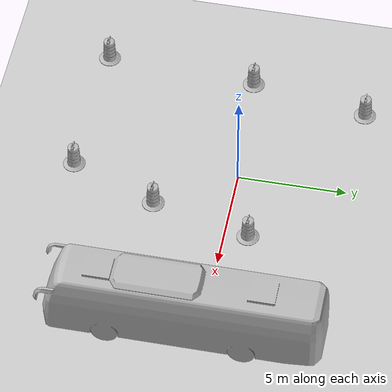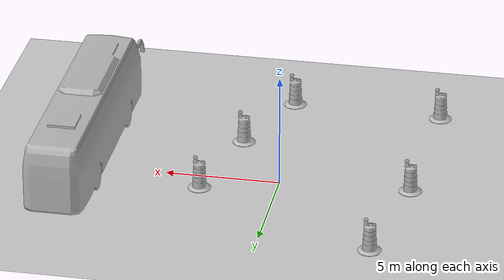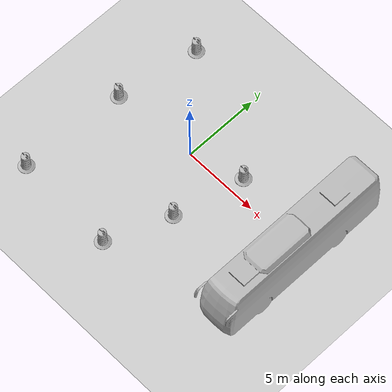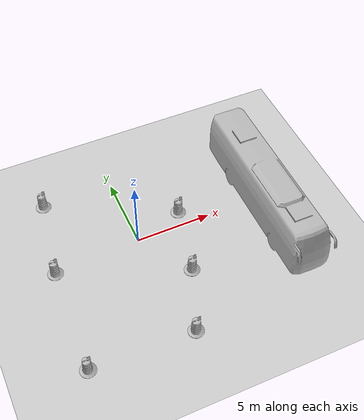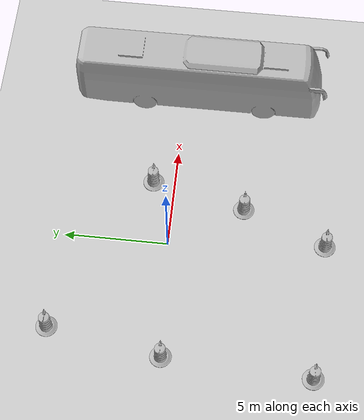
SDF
<sdf version="1.7">
 <world name="default">
  <light name="sun" type="directional">
   <pose>0 0 10 0 -0 0</pose>
   <diffuse>0.8 0.8 0.8 1</diffuse>
   <specular>0.2 0.2 0.2 1</specular>
   <attenuation>
    <range>1000</range>
    <constant>0.9</constant>
    <linear>0.01</linear>
    <quadratic>0.001</quadratic>
   </attenuation>
   <direction>-0.5 0.1 -0.9</direction>
   <spot><inner_angle>0</inner_angle><outer_angle>0</outer_angle><falloff>0</falloff></spot>
  </light>
  <model name="ground_plane">
   <static>1</static>
   <link name="link">
    <collision name="collision">
     <geometry><plane><normal>0 0 1</normal><size>100 100</size></plane></geometry>
     <surface><friction><ode><mu>100</mu><mu2>50</mu2></ode></friction></surface>
    </collision>
    <visual name="visual">
     <cast_shadows>0</cast_shadows>
     <geometry><plane><normal>0 0 1</normal><size>100 100</size></plane></geometry>
     <material>
      <script><uri>file://media/materials/scripts/gazebo.material</uri><name>Gazebo/Grey</name></script>
     </material>
    </visual>
   </link>
  </model>
  <gravity>0 0 -9.8</gravity>
  <magnetic_field>6e-06 2.3e-05 -4.2e-05</magnetic_field>
  <atmosphere type="adiabatic"/>
  <physics type="ode">
   <max_step_size>0.001</max_step_size>
   <real_time_factor>1</real_time_factor>
   <real_time_update_rate>1000</real_time_update_rate>
  </physics>
  <scene><ambient>0.4 0.4 0.4 1</ambient><background>0.7 0.7 0.7 1</background><shadows>1</shadows></scene>
  <audio><device>default</device></audio>
  <spherical_coordinates>
   <surface_model>EARTH_WGS84</surface_model>
   <latitude_deg>0</latitude_deg>
   <longitude_deg>0</longitude_deg>
   <elevation>0</elevation>
   <heading_deg>0</heading_deg>
  </spherical_coordinates>
  <model name="Construction Barrel">
   <link name="link">
    <inertial>
     <pose>0 0 0.4 0 -0 0</pose>
     <mass>500</mass>
     <inertia><ixx>51.2096</ixx><iyy>51.2096</iyy><izz>25</izz><ixy>0</ixy><ixz>0</ixz><iyz>0</iyz></inertia>
    </inertial>
    <collision name="collision">
     <geometry><mesh><uri>model://construction_barrel/meshes/construction_barrel.dae</uri></mesh></geometry>
    </collision>
    <visual name="visual">
     <geometry><mesh><uri>model://construction_barrel/meshes/construction_barrel.dae</uri></mesh></geometry>
    </visual>
   </link>
   <pose>3.30612 1.0624 -0 0 0 -1.8e-05</pose>
  </model>
  <model name="Construction Barrel_0">
   <link name="link">
    <inertial>
     <pose>0 0 0.4 0 -0 0</pose>
     <mass>500</mass>
     <inertia><ixx>51.2096</ixx><iyy>51.2096</iyy><izz>25</izz><ixy>0</ixy><ixz>0</ixz><iyz>0</iyz></inertia>
    </inertial>
    <collision name="collision">
     <geometry><mesh><uri>model://construction_barrel/meshes/construction_barrel.dae</uri></mesh></geometry>
    </collision>
    <visual name="visual">
     <geometry><mesh><uri>model://construction_barrel/meshes/construction_barrel.dae</uri></mesh></geometry>
    </visual>
   </link>
   <pose>-5.68691 -0.308023 -0 0 0 -1.4e-05</pose>
  </model>
  <model name="Construction Barrel_1">
   <link name="link">
    <inertial>
     <pose>0 0 0.4 0 -0 0</pose>
     <mass>500</mass>
     <inertia><ixx>51.2096</ixx><iyy>51.2096</iyy><izz>25</izz><ixy>0</ixy><ixz>0</ixz><iyz>0</iyz></inertia>
    </inertial>
    <collision name="collision">
     <geometry><mesh><uri>model://construction_barrel/meshes/construction_barrel.dae</uri></mesh></geometry>
    </collision>
    <visual name="visual">
     <geometry><mesh><uri>model://construction_barrel/meshes/construction_barrel.dae</uri></mesh></geometry>
    </visual>
   </link>
   <pose>2.21673 -3.49164 -1e-06 -8e-06 -2e-06 -1.7e-05</pose>
  </model>
  <model name="Construction Barrel_2">
   <link name="link">
    <inertial>
     <pose>0 0 0.4 0 -0 0</pose>
     <mass>500</mass>
     <inertia><ixx>51.2096</ixx><iyy>51.2096</iyy><izz>25</izz><ixy>0</ixy><ixz>0</ixz><iyz>0</iyz></inertia>
    </inertial>
    <collision name="collision">
     <geometry><mesh><uri>model://construction_barrel/meshes/construction_barrel.dae</uri></mesh></geometry>
    </collision>
    <visual name="visual">
     <geometry><mesh><uri>model://construction_barrel/meshes/construction_barrel.dae</uri></mesh></geometry>
    </visual>
   </link>
   <pose>-4.75222 5.12287 -0 0 0 -8e-06</pose>
  </model>
  <model name="bus">
   <static>1</static>
   <link name="link">
    <collision name="collision">
     <geometry><mesh><scale>0.01 0.01 0.01</scale><uri>model://bus/meshes/bus.obj</uri></mesh></geometry>
    </collision>
    <visual name="visual">
     <geometry><mesh><scale>0.01 0.01 0.01</scale><uri>model://bus/meshes/bus.obj</uri></mesh></geometry>
    </visual>
   </link>
   <pose>8.82139 -0.768478 0 0 -0 0</pose>
  </model>
  <model name="Construction Barrel_3">
   <link name="link">
    <inertial>
     <pose>0 0 0.4 0 -0 0</pose>
     <mass>500</mass>
     <inertia><ixx>51.2096</ixx><iyy>51.2096</iyy><izz>25</izz><ixy>0</ixy><ixz>0</ixz><iyz>0</iyz></inertia>
    </inertial>
    <collision name="collision">
     <geometry><mesh><uri>model://construction_barrel/meshes/construction_barrel.dae</uri></mesh></geometry>
    </collision>
    <visual name="visual">
     <geometry><mesh><uri>model://construction_barrel/meshes/construction_barrel.dae</uri></mesh></geometry>
    </visual>
   </link>
   <pose>-6.04137 -7.31755 0 0 -0 -6e-06</pose>
  </model>
  <model name="Construction Barrel_4">
   <link name="link">
    <inertial>
     <pose>0 0 0.4 0 -0 0</pose>
     <mass>500</mass>
     <inertia><ixx>51.2096</ixx><iyy>51.2096</iyy><izz>25</izz><ixy>0</ixy><ixz>0</ixz><iyz>0</iyz></inertia>
    </inertial>
    <collision name="collision">
     <geometry><mesh><uri>model://construction_barrel/meshes/construction_barrel.dae</uri></mesh></geometry>
    </collision>
    <visual name="visual">
     <geometry><mesh><uri>model://construction_barrel/meshes/construction_barrel.dae</uri></mesh></geometry>
    </visual>
   </link>
   <pose>0.618951 -7.5236 -1e-06 2e-06 -1e-06 -1.7e-05</pose>
  </model>
 </world>
</sdf>
